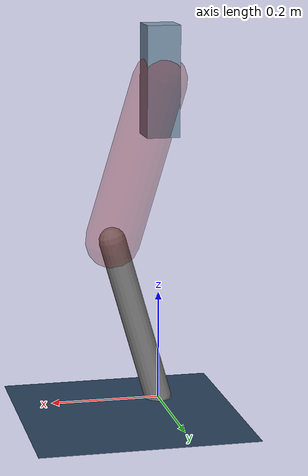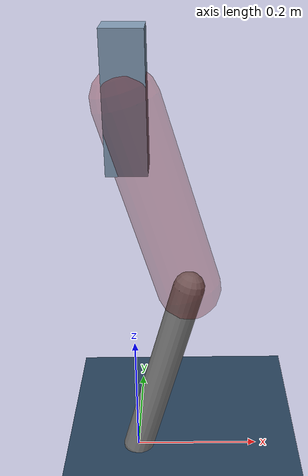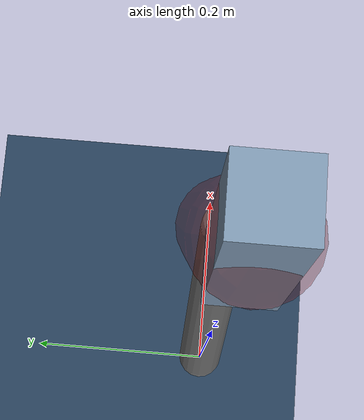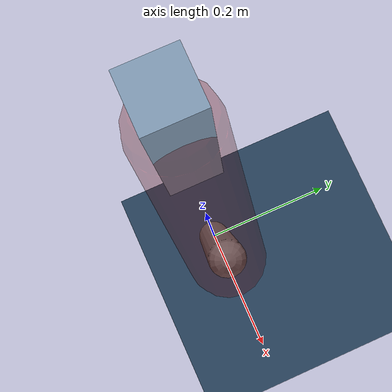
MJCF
<mujoco model="Hopper2D">
	<compiler inertiafromgeom="true" angle="radian" />
	<option timestep="0.001" integrator="implicit" cone="elliptic" solver="Newton" tolerance="1e-10" />

	<default>
		<geom contype="1" conaffinity="1" condim="3" friction="2 0.005 0.0001" solref="0.005 1" />
		<joint limited="true" damping="0.1" />
	</default>

	<asset>
		<texture name="skybox" type="skybox" builtin="gradient" rgb1=".4 .6 .8" rgb2="0 0 0" width="800" height="800" />
		<texture name="grid" type="2d" builtin="checker" rgb1=".1 .2 .3" rgb2=".2 .3 .4" width="300" height="300" mark="edge" markrgb=".2 .3 .4" />
		<material name="ground" texture="grid" texrepeat="1 1" texuniform="true" reflectance="0.1" />
		<material name="leg" rgba="0.5 0.6 0.7 1" />
	</asset>

	<worldbody>

		<geom name="floor" type="plane" size="5 5 0.25" material="ground" />

		<light directional="false" diffuse="0.8 0.8 0.8" specular="0.3 0.3 0.3" pos="0 0 2" dir="0 0 -1" />
		<light mode="targetbodycom" target="base" directional="false" diffuse="0.8 0.8 0.8" specular="0.3 0.3 0.3" pos="0 0 2" dir="0 0 -1" />

		<camera name="fixed" pos="0 -2 1" xyaxes="1 0 0 0 0 1" />
		<camera name="tracking" mode="trackcom" pos="0 -3 1" />

		<body name="root" pos="0 0 0.5923015102954348">
			<joint name="slide_x" type="slide" axis="1 0 0" range="-100 100" />
			<joint name="slide_z" type="slide" axis="0 0 1" range="0 10" />

			<body name="base" pos="0 0 0">
				<geom name="torso" type="box" size="0.03 0.03 0.1" mass="3.808" material="leg" />

				<body name="link1" pos="0 0 0" euler="0 1.2803468234156987 0">
					<joint type="hinge" axis="0 -1 0" pos="0 0 0" name="hinge1" limited="true" range="-3.14 3.14" stiffness="0" damping="0.1" />
					<geom name="thigh" type="capsule" fromto="0 0 0 0.30350980338517186 0 0" size="0.05" rgba="0.5 0 0 0.3" mass="0.998276469139964" />

					<body name="link2" pos="0.30350980338517186 0 0" euler="0 0.5711270156160546 0">
						<joint type="hinge" axis="0 -1 0" pos="0 0 0" name="hinge2" limited="true" range="-3.14 3.14" stiffness="0" damping="0.1" />
						<geom name="shank" type="capsule" fromto="0 0 0 0.313783107266306 0 0" size="0.025" mass="0.4946264858130448" />

					</body>
				</body>
			</body>
		</body>
	</worldbody>

	<actuator>
		<motor name="torque1" joint="hinge1" ctrlrange="-214.16200336692765 214.16200336692765" ctrllimited="true" gear="1" />
		<motor name="torque2" joint="hinge2" ctrlrange="-119.31426759488282 119.31426759488282" ctrllimited="true" gear="1" />
	</actuator>
</mujoco>
